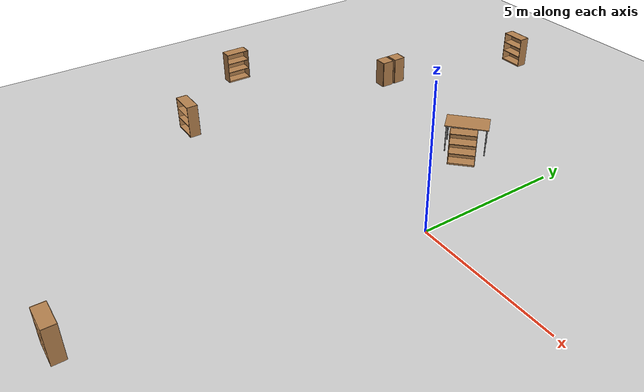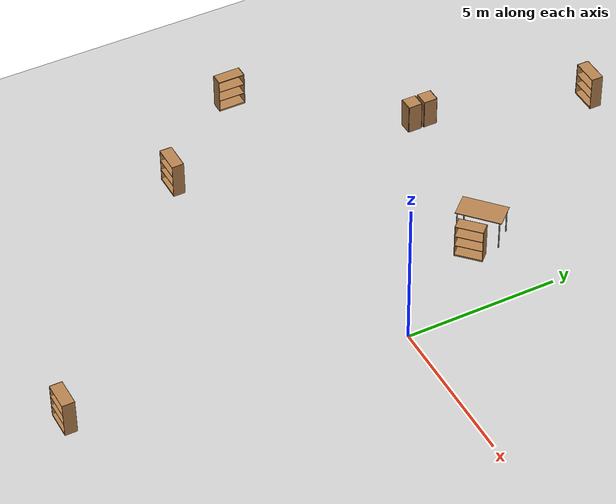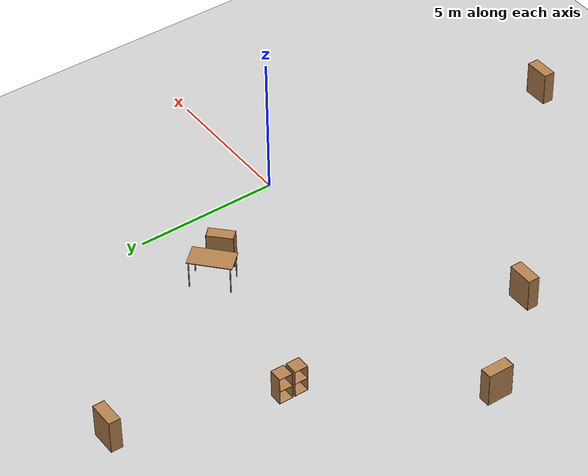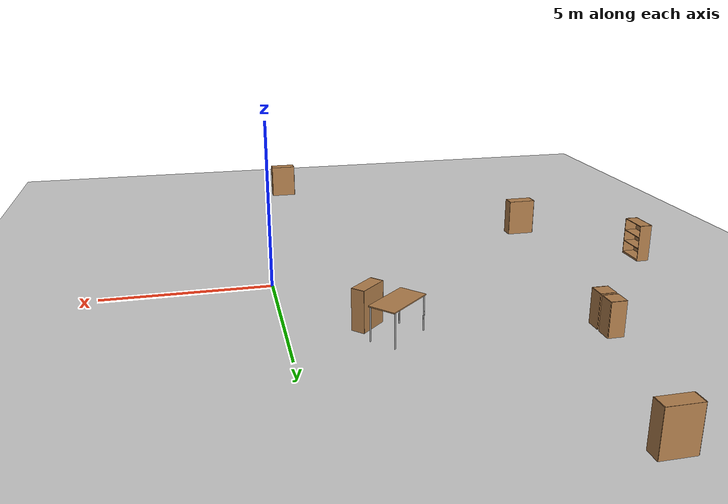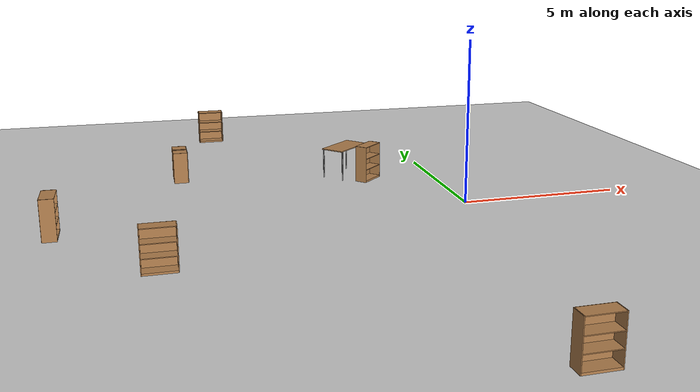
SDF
<sdf version="1.7">
 <world name="default">
  <model name="ground_plane">
   <static>1</static>
   <link name="link">
    <collision name="collision">
     <geometry><plane><normal>0 0 1</normal><size>100 100</size></plane></geometry>
     <surface>
      <contact><collide_bitmask>65535</collide_bitmask></contact>
      <friction><ode><mu>100</mu><mu2>50</mu2></ode></friction>
     </surface>
    </collision>
    <visual name="visual">
     <cast_shadows>0</cast_shadows>
     <geometry><plane><normal>0 0 1</normal><size>100 100</size></plane></geometry>
     <material>
      <script><uri>file://media/materials/scripts/gazebo.material</uri><name>Gazebo/Grey</name></script>
     </material>
    </visual>
   </link>
  </model>
  <model name="table_0">
   <static>1</static>
   <link name="link">
    <collision name="surface">
     <pose>0 0 1 0 -0 0</pose>
     <geometry><box><size>1.5 0.8 0.03</size></box></geometry>
     <surface><friction><ode><mu>0.6</mu><mu2>0.6</mu2></ode></friction></surface>
    </collision>
    <visual name="visual1">
     <pose>0 0 1 0 -0 0</pose>
     <geometry><box><size>1.5 0.8 0.03</size></box></geometry>
     <material>
      <script><uri>file://media/materials/scripts/gazebo.material</uri><name>Gazebo/Wood</name></script>
     </material>
    </visual>
    <collision name="front_left_leg">
     <pose>0.68 0.38 0.5 0 -0 0</pose>
     <geometry><cylinder><radius>0.02</radius><length>1</length></cylinder></geometry>
    </collision>
    <visual name="front_left_leg">
     <pose>0.68 0.38 0.5 0 -0 0</pose>
     <geometry><cylinder><radius>0.02</radius><length>1</length></cylinder></geometry>
     <material>
      <script><uri>file://media/materials/scripts/gazebo.material</uri><name>Gazebo/Grey</name></script>
     </material>
    </visual>
    <collision name="front_right_leg">
     <pose>0.68 -0.38 0.5 0 -0 0</pose>
     <geometry><cylinder><radius>0.02</radius><length>1</length></cylinder></geometry>
    </collision>
    <visual name="front_right_leg">
     <pose>0.68 -0.38 0.5 0 -0 0</pose>
     <geometry><cylinder><radius>0.02</radius><length>1</length></cylinder></geometry>
     <material>
      <script><uri>file://media/materials/scripts/gazebo.material</uri><name>Gazebo/Grey</name></script>
     </material>
    </visual>
    <collision name="back_right_leg">
     <pose>-0.68 -0.38 0.5 0 -0 0</pose>
     <geometry><cylinder><radius>0.02</radius><length>1</length></cylinder></geometry>
    </collision>
    <visual name="back_right_leg">
     <pose>-0.68 -0.38 0.5 0 -0 0</pose>
     <geometry><cylinder><radius>0.02</radius><length>1</length></cylinder></geometry>
     <material>
      <script><uri>file://media/materials/scripts/gazebo.material</uri><name>Gazebo/Grey</name></script>
     </material>
    </visual>
    <collision name="back_left_leg">
     <pose>-0.68 0.38 0.5 0 -0 0</pose>
     <geometry><cylinder><radius>0.02</radius><length>1</length></cylinder></geometry>
    </collision>
    <visual name="back_left_leg">
     <pose>-0.68 0.38 0.5 0 -0 0</pose>
     <geometry><cylinder><radius>0.02</radius><length>1</length></cylinder></geometry>
     <material>
      <script><uri>file://media/materials/scripts/gazebo.material</uri><name>Gazebo/Grey</name></script>
     </material>
    </visual>
   </link>
   <pose>-2.82776 4.12603 0 0 -0 0.737658</pose>
  </model>
  <model name="bookshelf">
   <static>1</static>
   <link name="link">
    <inertial><mass>1</mass></inertial>
    <collision name="back">
     <pose>0 0.005 0.6 0 -0 0</pose>
     <geometry><box><size>0.9 0.01 1.2</size></box></geometry>
    </collision>
    <visual name="visual1">
     <pose>0 0.005 0.6 0 -0 0</pose>
     <geometry><box><size>0.9 0.01 1.2</size></box></geometry>
     <material>
      <script><uri>file://media/materials/scripts/gazebo.material</uri><name>Gazebo/Wood</name></script>
     </material>
    </visual>
    <collision name="left_side">
     <pose>0.45 -0.195 0.6 0 -0 0</pose>
     <geometry><box><size>0.02 0.4 1.2</size></box></geometry>
    </collision>
    <visual name="visual2">
     <pose>0.45 -0.195 0.6 0 -0 0</pose>
     <geometry><box><size>0.02 0.4 1.2</size></box></geometry>
     <material>
      <script><uri>file://media/materials/scripts/gazebo.material</uri><name>Gazebo/Wood</name></script>
     </material>
    </visual>
    <collision name="right_side">
     <pose>-0.45 -0.195 0.6 0 -0 0</pose>
     <geometry><box><size>0.02 0.4 1.2</size></box></geometry>
    </collision>
    <visual name="visual3">
     <pose>-0.45 -0.195 0.6 0 -0 0</pose>
     <geometry><box><size>0.02 0.4 1.2</size></box></geometry>
     <material>
      <script><uri>file://media/materials/scripts/gazebo.material</uri><name>Gazebo/Wood</name></script>
     </material>
    </visual>
    <collision name="bottom">
     <pose>0 -0.195 0.03 0 -0 0</pose>
     <geometry><box><size>0.88 0.4 0.06</size></box></geometry>
    </collision>
    <visual name="visual4">
     <pose>0 -0.195 0.03 0 -0 0</pose>
     <geometry><box><size>0.88 0.4 0.06</size></box></geometry>
     <material>
      <script><uri>file://media/materials/scripts/gazebo.material</uri><name>Gazebo/Wood</name></script>
     </material>
    </visual>
    <collision name="top">
     <pose>0 -0.195 1.19 0 -0 0</pose>
     <geometry><box><size>0.88 0.4 0.02</size></box></geometry>
    </collision>
    <visual name="visual5">
     <pose>0 -0.195 1.19 0 -0 0</pose>
     <geometry><box><size>0.88 0.4 0.02</size></box></geometry>
     <material>
      <script><uri>file://media/materials/scripts/gazebo.material</uri><name>Gazebo/Wood</name></script>
     </material>
    </visual>
    <collision name="low_shelf">
     <pose>0 -0.195 0.43 0 -0 0</pose>
     <geometry><box><size>0.88 0.4 0.02</size></box></geometry>
    </collision>
    <visual name="visual6">
     <pose>0 -0.195 0.43 0 -0 0</pose>
     <geometry><box><size>0.88 0.4 0.02</size></box></geometry>
     <material>
      <script><uri>file://media/materials/scripts/gazebo.material</uri><name>Gazebo/Wood</name></script>
     </material>
    </visual>
    <collision name="high_shelf">
     <pose>0 -0.195 0.8 0 -0 0</pose>
     <geometry><box><size>0.88 0.4 0.02</size></box></geometry>
    </collision>
    <visual name="visual7">
     <pose>0 -0.195 0.8 0 -0 0</pose>
     <geometry><box><size>0.88 0.4 0.02</size></box></geometry>
     <material>
      <script><uri>file://media/materials/scripts/gazebo.material</uri><name>Gazebo/Wood</name></script>
     </material>
    </visual>
   </link>
   <pose>-6.80218 10.649 0 0 -0 0</pose>
  </model>
  <model name="bookshelf_0">
   <static>1</static>
   <link name="link">
    <inertial><mass>1</mass></inertial>
    <collision name="back">
     <pose>0 0.005 0.6 0 -0 0</pose>
     <geometry><box><size>0.9 0.01 1.2</size></box></geometry>
    </collision>
    <visual name="visual1">
     <pose>0 0.005 0.6 0 -0 0</pose>
     <geometry><box><size>0.9 0.01 1.2</size></box></geometry>
     <material>
      <script><uri>file://media/materials/scripts/gazebo.material</uri><name>Gazebo/Wood</name></script>
     </material>
    </visual>
    <collision name="left_side">
     <pose>0.45 -0.195 0.6 0 -0 0</pose>
     <geometry><box><size>0.02 0.4 1.2</size></box></geometry>
    </collision>
    <visual name="visual2">
     <pose>0.45 -0.195 0.6 0 -0 0</pose>
     <geometry><box><size>0.02 0.4 1.2</size></box></geometry>
     <material>
      <script><uri>file://media/materials/scripts/gazebo.material</uri><name>Gazebo/Wood</name></script>
     </material>
    </visual>
    <collision name="right_side">
     <pose>-0.45 -0.195 0.6 0 -0 0</pose>
     <geometry><box><size>0.02 0.4 1.2</size></box></geometry>
    </collision>
    <visual name="visual3">
     <pose>-0.45 -0.195 0.6 0 -0 0</pose>
     <geometry><box><size>0.02 0.4 1.2</size></box></geometry>
     <material>
      <script><uri>file://media/materials/scripts/gazebo.material</uri><name>Gazebo/Wood</name></script>
     </material>
    </visual>
    <collision name="bottom">
     <pose>0 -0.195 0.03 0 -0 0</pose>
     <geometry><box><size>0.88 0.4 0.06</size></box></geometry>
    </collision>
    <visual name="visual4">
     <pose>0 -0.195 0.03 0 -0 0</pose>
     <geometry><box><size>0.88 0.4 0.06</size></box></geometry>
     <material>
      <script><uri>file://media/materials/scripts/gazebo.material</uri><name>Gazebo/Wood</name></script>
     </material>
    </visual>
    <collision name="top">
     <pose>0 -0.195 1.19 0 -0 0</pose>
     <geometry><box><size>0.88 0.4 0.02</size></box></geometry>
    </collision>
    <visual name="visual5">
     <pose>0 -0.195 1.19 0 -0 0</pose>
     <geometry><box><size>0.88 0.4 0.02</size></box></geometry>
     <material>
      <script><uri>file://media/materials/scripts/gazebo.material</uri><name>Gazebo/Wood</name></script>
     </material>
    </visual>
    <collision name="low_shelf">
     <pose>0 -0.195 0.43 0 -0 0</pose>
     <geometry><box><size>0.88 0.4 0.02</size></box></geometry>
    </collision>
    <visual name="visual6">
     <pose>0 -0.195 0.43 0 -0 0</pose>
     <geometry><box><size>0.88 0.4 0.02</size></box></geometry>
     <material>
      <script><uri>file://media/materials/scripts/gazebo.material</uri><name>Gazebo/Wood</name></script>
     </material>
    </visual>
    <collision name="high_shelf">
     <pose>0 -0.195 0.8 0 -0 0</pose>
     <geometry><box><size>0.88 0.4 0.02</size></box></geometry>
    </collision>
    <visual name="visual7">
     <pose>0 -0.195 0.8 0 -0 0</pose>
     <geometry><box><size>0.88 0.4 0.02</size></box></geometry>
     <material>
      <script><uri>file://media/materials/scripts/gazebo.material</uri><name>Gazebo/Wood</name></script>
     </material>
    </visual>
   </link>
   <pose>-12.257 0.022528 0 0 -0 1.5708</pose>
  </model>
  <model name="bookshelf_1">
   <static>1</static>
   <link name="link">
    <inertial><mass>1</mass></inertial>
    <collision name="back">
     <pose>0 0.005 0.6 0 -0 0</pose>
     <geometry><box><size>0.9 0.01 1.2</size></box></geometry>
    </collision>
    <visual name="visual1">
     <pose>0 0.005 0.6 0 -0 0</pose>
     <geometry><box><size>0.9 0.01 1.2</size></box></geometry>
     <material>
      <script><uri>file://media/materials/scripts/gazebo.material</uri><name>Gazebo/Wood</name></script>
     </material>
    </visual>
    <collision name="left_side">
     <pose>0.45 -0.195 0.6 0 -0 0</pose>
     <geometry><box><size>0.02 0.4 1.2</size></box></geometry>
    </collision>
    <visual name="visual2">
     <pose>0.45 -0.195 0.6 0 -0 0</pose>
     <geometry><box><size>0.02 0.4 1.2</size></box></geometry>
     <material>
      <script><uri>file://media/materials/scripts/gazebo.material</uri><name>Gazebo/Wood</name></script>
     </material>
    </visual>
    <collision name="right_side">
     <pose>-0.45 -0.195 0.6 0 -0 0</pose>
     <geometry><box><size>0.02 0.4 1.2</size></box></geometry>
    </collision>
    <visual name="visual3">
     <pose>-0.45 -0.195 0.6 0 -0 0</pose>
     <geometry><box><size>0.02 0.4 1.2</size></box></geometry>
     <material>
      <script><uri>file://media/materials/scripts/gazebo.material</uri><name>Gazebo/Wood</name></script>
     </material>
    </visual>
    <collision name="bottom">
     <pose>0 -0.195 0.03 0 -0 0</pose>
     <geometry><box><size>0.88 0.4 0.06</size></box></geometry>
    </collision>
    <visual name="visual4">
     <pose>0 -0.195 0.03 0 -0 0</pose>
     <geometry><box><size>0.88 0.4 0.06</size></box></geometry>
     <material>
      <script><uri>file://media/materials/scripts/gazebo.material</uri><name>Gazebo/Wood</name></script>
     </material>
    </visual>
    <collision name="top">
     <pose>0 -0.195 1.19 0 -0 0</pose>
     <geometry><box><size>0.88 0.4 0.02</size></box></geometry>
    </collision>
    <visual name="visual5">
     <pose>0 -0.195 1.19 0 -0 0</pose>
     <geometry><box><size>0.88 0.4 0.02</size></box></geometry>
     <material>
      <script><uri>file://media/materials/scripts/gazebo.material</uri><name>Gazebo/Wood</name></script>
     </material>
    </visual>
    <collision name="low_shelf">
     <pose>0 -0.195 0.43 0 -0 0</pose>
     <geometry><box><size>0.88 0.4 0.02</size></box></geometry>
    </collision>
    <visual name="visual6">
     <pose>0 -0.195 0.43 0 -0 0</pose>
     <geometry><box><size>0.88 0.4 0.02</size></box></geometry>
     <material>
      <script><uri>file://media/materials/scripts/gazebo.material</uri><name>Gazebo/Wood</name></script>
     </material>
    </visual>
    <collision name="high_shelf">
     <pose>0 -0.195 0.8 0 -0 0</pose>
     <geometry><box><size>0.88 0.4 0.02</size></box></geometry>
    </collision>
    <visual name="visual7">
     <pose>0 -0.195 0.8 0 -0 0</pose>
     <geometry><box><size>0.88 0.4 0.02</size></box></geometry>
     <material>
      <script><uri>file://media/materials/scripts/gazebo.material</uri><name>Gazebo/Wood</name></script>
     </material>
    </visual>
   </link>
   <pose>-9.29234 -3.12068 0 0 -0 0</pose>
  </model>
  <model name="bookshelf_4">
   <static>1</static>
   <link name="link">
    <inertial><mass>1</mass></inertial>
    <collision name="back">
     <pose>0 0.005 0.6 0 -0 0</pose>
     <geometry><box><size>0.9 0.01 1.2</size></box></geometry>
    </collision>
    <visual name="visual1">
     <pose>0 0.005 0.6 0 -0 0</pose>
     <geometry><box><size>0.9 0.01 1.2</size></box></geometry>
     <material>
      <script><uri>file://media/materials/scripts/gazebo.material</uri><name>Gazebo/Wood</name></script>
     </material>
    </visual>
    <collision name="left_side">
     <pose>0.45 -0.195 0.6 0 -0 0</pose>
     <geometry><box><size>0.02 0.4 1.2</size></box></geometry>
    </collision>
    <visual name="visual2">
     <pose>0.45 -0.195 0.6 0 -0 0</pose>
     <geometry><box><size>0.02 0.4 1.2</size></box></geometry>
     <material>
      <script><uri>file://media/materials/scripts/gazebo.material</uri><name>Gazebo/Wood</name></script>
     </material>
    </visual>
    <collision name="right_side">
     <pose>-0.45 -0.195 0.6 0 -0 0</pose>
     <geometry><box><size>0.02 0.4 1.2</size></box></geometry>
    </collision>
    <visual name="visual3">
     <pose>-0.45 -0.195 0.6 0 -0 0</pose>
     <geometry><box><size>0.02 0.4 1.2</size></box></geometry>
     <material>
      <script><uri>file://media/materials/scripts/gazebo.material</uri><name>Gazebo/Wood</name></script>
     </material>
    </visual>
    <collision name="bottom">
     <pose>0 -0.195 0.03 0 -0 0</pose>
     <geometry><box><size>0.88 0.4 0.06</size></box></geometry>
    </collision>
    <visual name="visual4">
     <pose>0 -0.195 0.03 0 -0 0</pose>
     <geometry><box><size>0.88 0.4 0.06</size></box></geometry>
     <material>
      <script><uri>file://media/materials/scripts/gazebo.material</uri><name>Gazebo/Wood</name></script>
     </material>
    </visual>
    <collision name="top">
     <pose>0 -0.195 1.19 0 -0 0</pose>
     <geometry><box><size>0.88 0.4 0.02</size></box></geometry>
    </collision>
    <visual name="visual5">
     <pose>0 -0.195 1.19 0 -0 0</pose>
     <geometry><box><size>0.88 0.4 0.02</size></box></geometry>
     <material>
      <script><uri>file://media/materials/scripts/gazebo.material</uri><name>Gazebo/Wood</name></script>
     </material>
    </visual>
    <collision name="low_shelf">
     <pose>0 -0.195 0.43 0 -0 0</pose>
     <geometry><box><size>0.88 0.4 0.02</size></box></geometry>
    </collision>
    <visual name="visual6">
     <pose>0 -0.195 0.43 0 -0 0</pose>
     <geometry><box><size>0.88 0.4 0.02</size></box></geometry>
     <material>
      <script><uri>file://media/materials/scripts/gazebo.material</uri><name>Gazebo/Wood</name></script>
     </material>
    </visual>
    <collision name="high_shelf">
     <pose>0 -0.195 0.8 0 -0 0</pose>
     <geometry><box><size>0.88 0.4 0.02</size></box></geometry>
    </collision>
    <visual name="visual7">
     <pose>0 -0.195 0.8 0 -0 0</pose>
     <geometry><box><size>0.88 0.4 0.02</size></box></geometry>
     <material>
      <script><uri>file://media/materials/scripts/gazebo.material</uri><name>Gazebo/Wood</name></script>
     </material>
    </visual>
   </link>
   <pose>-1.54199 -10.2049 0 0 -0 0</pose>
  </model>
  <model name="bookshelf_5">
   <static>1</static>
   <link name="link">
    <inertial><mass>1</mass></inertial>
    <collision name="back">
     <pose>0 0.005 0.6 0 -0 0</pose>
     <geometry><box><size>0.9 0.01 1.2</size></box></geometry>
    </collision>
    <visual name="visual1">
     <pose>0 0.005 0.6 0 -0 0</pose>
     <geometry><box><size>0.9 0.01 1.2</size></box></geometry>
     <material>
      <script><uri>file://media/materials/scripts/gazebo.material</uri><name>Gazebo/Wood</name></script>
     </material>
    </visual>
    <collision name="left_side">
     <pose>0.45 -0.195 0.6 0 -0 0</pose>
     <geometry><box><size>0.02 0.4 1.2</size></box></geometry>
    </collision>
    <visual name="visual2">
     <pose>0.45 -0.195 0.6 0 -0 0</pose>
     <geometry><box><size>0.02 0.4 1.2</size></box></geometry>
     <material>
      <script><uri>file://media/materials/scripts/gazebo.material</uri><name>Gazebo/Wood</name></script>
     </material>
    </visual>
    <collision name="right_side">
     <pose>-0.45 -0.195 0.6 0 -0 0</pose>
     <geometry><box><size>0.02 0.4 1.2</size></box></geometry>
    </collision>
    <visual name="visual3">
     <pose>-0.45 -0.195 0.6 0 -0 0</pose>
     <geometry><box><size>0.02 0.4 1.2</size></box></geometry>
     <material>
      <script><uri>file://media/materials/scripts/gazebo.material</uri><name>Gazebo/Wood</name></script>
     </material>
    </visual>
    <collision name="bottom">
     <pose>0 -0.195 0.03 0 -0 0</pose>
     <geometry><box><size>0.88 0.4 0.06</size></box></geometry>
    </collision>
    <visual name="visual4">
     <pose>0 -0.195 0.03 0 -0 0</pose>
     <geometry><box><size>0.88 0.4 0.06</size></box></geometry>
     <material>
      <script><uri>file://media/materials/scripts/gazebo.material</uri><name>Gazebo/Wood</name></script>
     </material>
    </visual>
    <collision name="top">
     <pose>0 -0.195 1.19 0 -0 0</pose>
     <geometry><box><size>0.88 0.4 0.02</size></box></geometry>
    </collision>
    <visual name="visual5">
     <pose>0 -0.195 1.19 0 -0 0</pose>
     <geometry><box><size>0.88 0.4 0.02</size></box></geometry>
     <material>
      <script><uri>file://media/materials/scripts/gazebo.material</uri><name>Gazebo/Wood</name></script>
     </material>
    </visual>
    <collision name="low_shelf">
     <pose>0 -0.195 0.43 0 -0 0</pose>
     <geometry><box><size>0.88 0.4 0.02</size></box></geometry>
    </collision>
    <visual name="visual6">
     <pose>0 -0.195 0.43 0 -0 0</pose>
     <geometry><box><size>0.88 0.4 0.02</size></box></geometry>
     <material>
      <script><uri>file://media/materials/scripts/gazebo.material</uri><name>Gazebo/Wood</name></script>
     </material>
    </visual>
    <collision name="high_shelf">
     <pose>0 -0.195 0.8 0 -0 0</pose>
     <geometry><box><size>0.88 0.4 0.02</size></box></geometry>
    </collision>
    <visual name="visual7">
     <pose>0 -0.195 0.8 0 -0 0</pose>
     <geometry><box><size>0.88 0.4 0.02</size></box></geometry>
     <material>
      <script><uri>file://media/materials/scripts/gazebo.material</uri><name>Gazebo/Wood</name></script>
     </material>
    </visual>
   </link>
   <pose>-2.33375 3.50627 0 0 -0 0.765974</pose>
  </model>
  <model name="cabinet_1">
   <static>1</static>
   <link name="cabinet_bottom_plate">
    <inertial>
     <pose>0 0 -1 0 -0 0</pose>
     <inertia><ixx>2.05</ixx><ixy>0</ixy><ixz>0</ixz><iyy>2.05</iyy><iyz>0</iyz><izz>2.05</izz></inertia>
     <mass>25</mass>
    </inertial>
    <collision name="cabinet_bottom_plate_geom">
     <pose>0 0 0.01 0 -0 0</pose>
     <geometry><box><size>0.45 0.45 0.02</size></box></geometry>
    </collision>
    <visual name="cabinet_bottom_plate_geom_visual">
     <pose>0 0 0.01 0 -0 0</pose>
     <geometry><box><size>0.45 0.45 0.02</size></box></geometry>
     <material>
      <script><uri>file://media/materials/scripts/gazebo.material</uri><name>Gazebo/Wood</name></script>
     </material>
    </visual>
    <collision name="cabinet_bottom_plate_geom_cabinet_back_plate">
     <pose>0.235 0 0.51 0 -0 0</pose>
     <geometry><box><size>0.02 0.45 1.02</size></box></geometry>
    </collision>
    <visual name="cabinet_bottom_plate_geom_cabinet_back_plate_visual">
     <pose>0.235 0 0.51 0 -0 0</pose>
     <geometry><box><size>0.02 0.45 1.02</size></box></geometry>
     <material>
      <script><uri>file://media/materials/scripts/gazebo.material</uri><name>Gazebo/Wood</name></script>
     </material>
    </visual>
    <collision name="cabinet_bottom_plate_geom_cabinet_left_plate">
     <pose>0 0.235 0.51 0 -0 0</pose>
     <geometry><box><size>0.45 0.02 1.02</size></box></geometry>
    </collision>
    <visual name="cabinet_bottom_plate_geom_cabinet_left_plate_visual">
     <pose>0 0.235 0.51 0 -0 0</pose>
     <geometry><box><size>0.45 0.02 1.02</size></box></geometry>
     <material>
      <script><uri>file://media/materials/scripts/gazebo.material</uri><name>Gazebo/Wood</name></script>
     </material>
    </visual>
    <collision name="cabinet_bottom_plate_geom_cabinet_middle_plate">
     <pose>0 0 0.51 0 -0 0</pose>
     <geometry><box><size>0.45 0.45 0.02</size></box></geometry>
    </collision>
    <visual name="cabinet_bottom_plate_geom_cabinet_middle_plate_visual">
     <pose>0 0 0.51 0 -0 0</pose>
     <geometry><box><size>0.45 0.45 0.02</size></box></geometry>
     <material>
      <script><uri>file://media/materials/scripts/gazebo.material</uri><name>Gazebo/Wood</name></script>
     </material>
    </visual>
    <collision name="cabinet_bottom_plate_geom_cabinet_right_plate">
     <pose>0 -0.235 0.51 0 -0 0</pose>
     <geometry><box><size>0.45 0.02 1.02</size></box></geometry>
    </collision>
    <visual name="cabinet_bottom_plate_geom_cabinet_right_plate_visual">
     <pose>0 -0.235 0.51 0 -0 0</pose>
     <geometry><box><size>0.45 0.02 1.02</size></box></geometry>
     <material>
      <script><uri>file://media/materials/scripts/gazebo.material</uri><name>Gazebo/Wood</name></script>
     </material>
    </visual>
    <collision name="cabinet_bottom_plate_geom_cabinet_top_plate">
     <pose>0 0 1.01 0 -0 0</pose>
     <geometry><box><size>0.45 0.45 0.02</size></box></geometry>
    </collision>
    <visual name="cabinet_bottom_plate_geom_cabinet_top_plate_visual">
     <pose>0 0 1.01 0 -0 0</pose>
     <geometry><box><size>0.45 0.45 0.02</size></box></geometry>
     <material>
      <script><uri>file://media/materials/scripts/gazebo.material</uri><name>Gazebo/Wood</name></script>
     </material>
    </visual>
   </link>
   <pose>-8.31997 5.27109 0 0 -0 0</pose>
  </model>
  <model name="cabinet_2">
   <static>1</static>
   <link name="cabinet_bottom_plate">
    <inertial>
     <pose>0 0 -1 0 -0 0</pose>
     <inertia><ixx>2.05</ixx><ixy>0</ixy><ixz>0</ixz><iyy>2.05</iyy><iyz>0</iyz><izz>2.05</izz></inertia>
     <mass>25</mass>
    </inertial>
    <collision name="cabinet_bottom_plate_geom">
     <pose>0 0 0.01 0 -0 0</pose>
     <geometry><box><size>0.45 0.45 0.02</size></box></geometry>
    </collision>
    <visual name="cabinet_bottom_plate_geom_visual">
     <pose>0 0 0.01 0 -0 0</pose>
     <geometry><box><size>0.45 0.45 0.02</size></box></geometry>
     <material>
      <script><uri>file://media/materials/scripts/gazebo.material</uri><name>Gazebo/Wood</name></script>
     </material>
    </visual>
    <collision name="cabinet_bottom_plate_geom_cabinet_back_plate">
     <pose>0.235 0 0.51 0 -0 0</pose>
     <geometry><box><size>0.02 0.45 1.02</size></box></geometry>
    </collision>
    <visual name="cabinet_bottom_plate_geom_cabinet_back_plate_visual">
     <pose>0.235 0 0.51 0 -0 0</pose>
     <geometry><box><size>0.02 0.45 1.02</size></box></geometry>
     <material>
      <script><uri>file://media/materials/scripts/gazebo.material</uri><name>Gazebo/Wood</name></script>
     </material>
    </visual>
    <collision name="cabinet_bottom_plate_geom_cabinet_left_plate">
     <pose>0 0.235 0.51 0 -0 0</pose>
     <geometry><box><size>0.45 0.02 1.02</size></box></geometry>
    </collision>
    <visual name="cabinet_bottom_plate_geom_cabinet_left_plate_visual">
     <pose>0 0.235 0.51 0 -0 0</pose>
     <geometry><box><size>0.45 0.02 1.02</size></box></geometry>
     <material>
      <script><uri>file://media/materials/scripts/gazebo.material</uri><name>Gazebo/Wood</name></script>
     </material>
    </visual>
    <collision name="cabinet_bottom_plate_geom_cabinet_middle_plate">
     <pose>0 0 0.51 0 -0 0</pose>
     <geometry><box><size>0.45 0.45 0.02</size></box></geometry>
    </collision>
    <visual name="cabinet_bottom_plate_geom_cabinet_middle_plate_visual">
     <pose>0 0 0.51 0 -0 0</pose>
     <geometry><box><size>0.45 0.45 0.02</size></box></geometry>
     <material>
      <script><uri>file://media/materials/scripts/gazebo.material</uri><name>Gazebo/Wood</name></script>
     </material>
    </visual>
    <collision name="cabinet_bottom_plate_geom_cabinet_right_plate">
     <pose>0 -0.235 0.51 0 -0 0</pose>
     <geometry><box><size>0.45 0.02 1.02</size></box></geometry>
    </collision>
    <visual name="cabinet_bottom_plate_geom_cabinet_right_plate_visual">
     <pose>0 -0.235 0.51 0 -0 0</pose>
     <geometry><box><size>0.45 0.02 1.02</size></box></geometry>
     <material>
      <script><uri>file://media/materials/scripts/gazebo.material</uri><name>Gazebo/Wood</name></script>
     </material>
    </visual>
    <collision name="cabinet_bottom_plate_geom_cabinet_top_plate">
     <pose>0 0 1.01 0 -0 0</pose>
     <geometry><box><size>0.45 0.45 0.02</size></box></geometry>
    </collision>
    <visual name="cabinet_bottom_plate_geom_cabinet_top_plate_visual">
     <pose>0 0 1.01 0 -0 0</pose>
     <geometry><box><size>0.45 0.45 0.02</size></box></geometry>
     <material>
      <script><uri>file://media/materials/scripts/gazebo.material</uri><name>Gazebo/Wood</name></script>
     </material>
    </visual>
   </link>
   <pose>-8.32234 4.71569 0 0 -0 0</pose>
  </model>
 </world>
</sdf>
